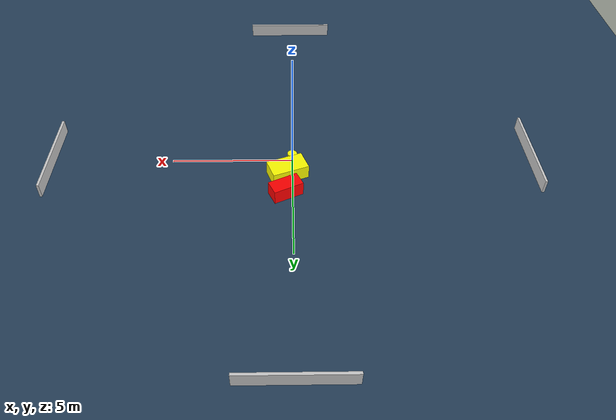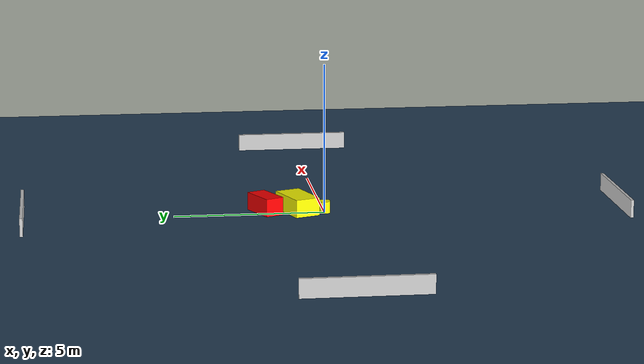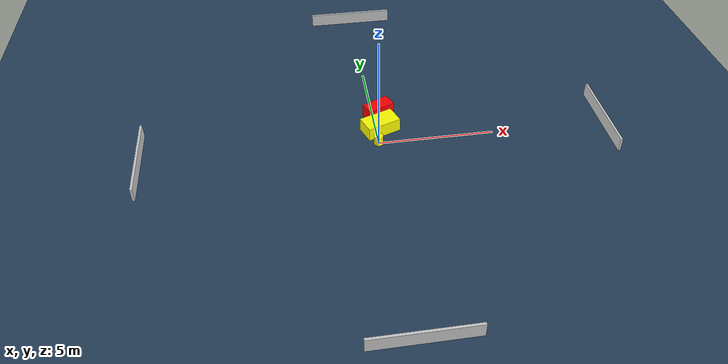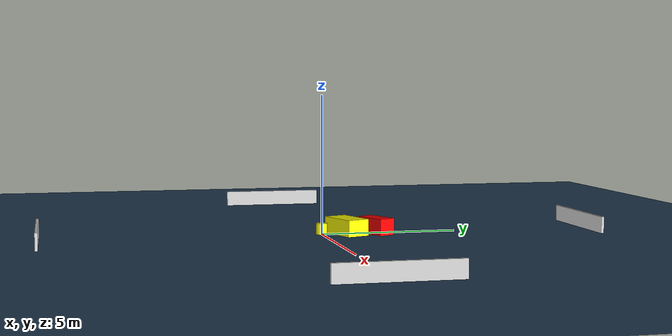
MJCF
<?xml version="1.0" ?>
<mujoco model="generated_environment">
  <option timestep="0.01" integrator="RK4" cone="elliptic"/>
  <default>
    <geom density="1"/>
  </default>
  <asset>
    <texture builtin="gradient" height="3072" name="skybox" rgb1="0.3 0.5 0.7" rgb2="0 0 0" type="skybox" width="512"/>
    <texture builtin="checker" height="300" name="groundplane" rgb1="0.2 0.3 0.4" rgb2="0.1 0.2 0.3" type="2d" width="300"/>
    <material name="groundplane" reflectance="0.2" texrepeat="5 5" texture="groundplane"/>
  </asset>
  <worldbody>
    <light dir="0 0 -1" directional="true" pos="0 0 1.5"/>
    <geom condim="3" friction="0.5 0.005 0.001" material="groundplane" name="floor" pos="0 0 0" size="0 0 0.05" type="plane"/>
    <body name="walls">
      <geom name="wall_1" condim="4" pos="-10.0 0.0 0.3" rgba="0.800000011920929 0.800000011920929 0.800000011920929 1.0" size="0.05 2.0 0.3" type="box"/>
      <geom name="wall_2" condim="4" pos="10.0 0.0 0.3" rgba="0.800000011920929 0.800000011920929 0.800000011920929 1.0" size="0.05 2.0 0.3" type="box"/>
      <geom name="wall_3" condim="4" pos="0.0 -10.0 0.3" rgba="0.800000011920929 0.800000011920929 0.800000011920929 1.0" size="2.0 0.05 0.3" type="box"/>
      <geom name="wall_4" condim="4" pos="0.0 10.0 0.3" rgba="0.800000011920929 0.800000011920929 0.800000011920929 1.0" size="2.0 0.05 0.3" type="box"/>
    </body>
    <body name="robot">
      <joint name="joint_x" type="slide" pos="0 0 0" axis="1 0 0"/>
      <joint name="joint_y" type="slide" pos="0 0 0" axis="0 1 0"/>
      <geom name="robot" type="cylinder" pos="0.0 0.0 0.2" size="0.2 0.2 0.0" mass="5.0" friction="1.0 0.005 0.0001" condim="4" rgba="1.0 1.0 0.0 1.0"/>
    </body>
    <body name="obstacle_1_movable">
      <geom name="obstacle_1_movable" condim="4" pos="0.19977035964426929 0.8782070826345602 0.3" euler="0 0 110.6359881088914" friction="0.0 0.005 0.001" rgba="1.0 1.0 0.0 1.0" size="0.4293501343139548 0.7597913040151663 0.3" type="box" mass="0.1"/>
      <joint type="free"/>
    </body>
    <body name="obstacle_2_static">
      <geom name="obstacle_2_static" condim="4" pos="0.2805775041873431 1.9493033731222105 0.3" euler="0 0 115.25592941413277" friction="0.0 0.005 0.001" rgba="1.0 0.0 0.0 1.0" size="0.3164545679329116 0.6214357595321114 0.3" type="box"/>
    </body>
  </worldbody>
  <actuator>
    <motor name="actuator_x" joint="joint_x" gear="1" ctrlrange="-1 1"/>
    <motor name="actuator_y" joint="joint_y" gear="1" ctrlrange="-1 1"/>
  </actuator>
</mujoco>
